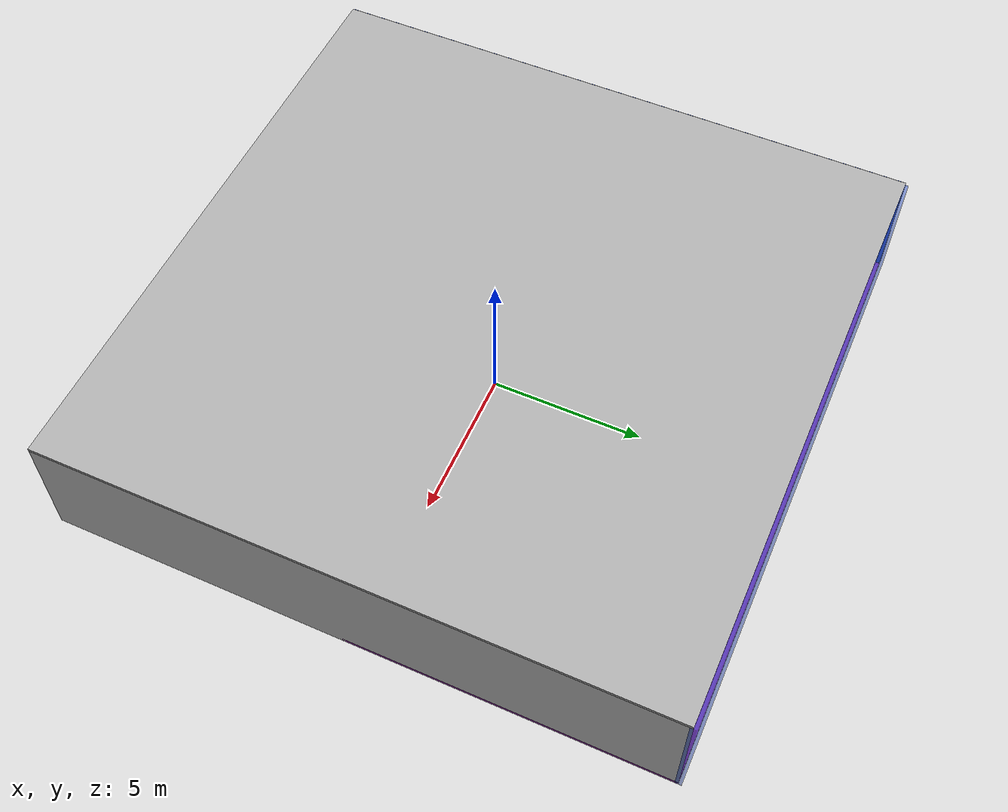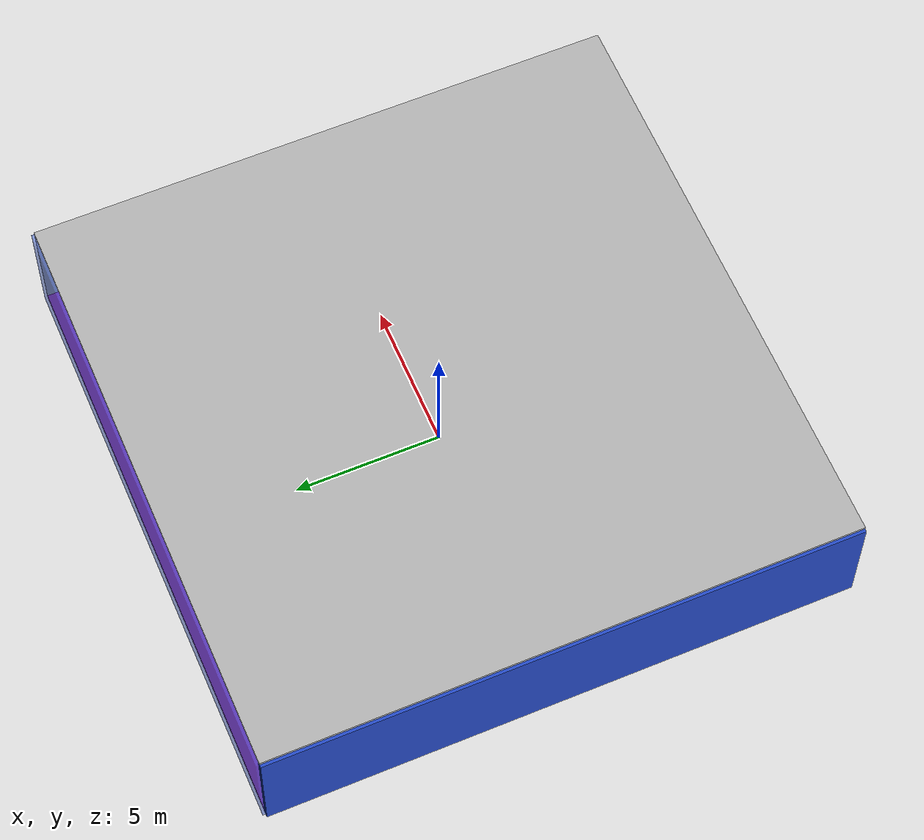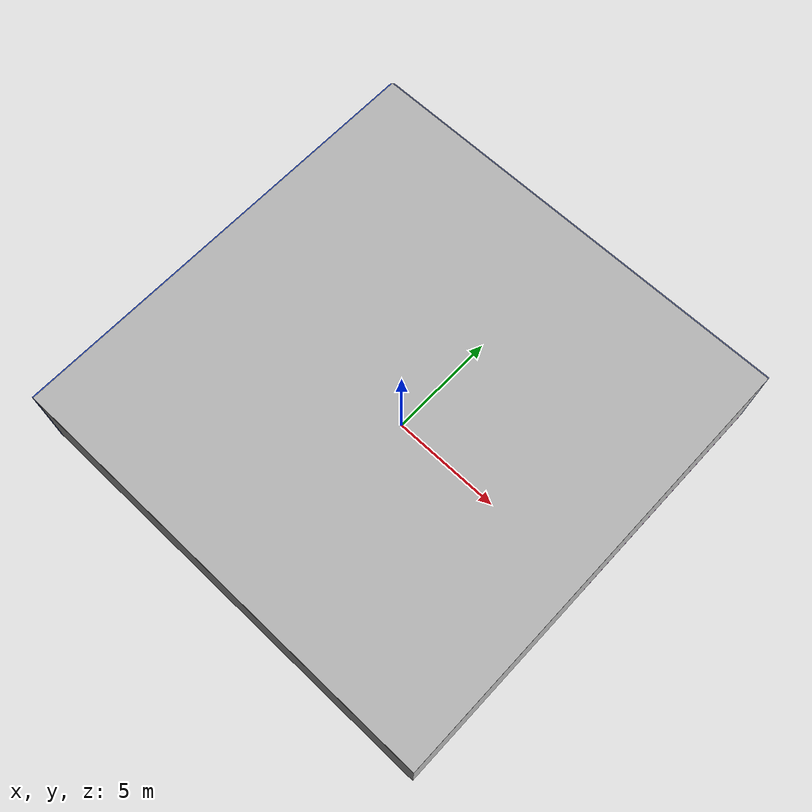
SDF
<sdf version="1.4">
 <world name="default">
  <physics type="ode">
   <max_step_size>0.001</max_step_size>
   <real_time_factor>1</real_time_factor>
   <real_time_update_rate>1000</real_time_update_rate>
   <gravity>0 0 -9.8</gravity>
  </physics>
  <scene><ambient>0.4 0.4 0.4 1</ambient><background>0.7 0.7 0.7 1</background><shadows>1</shadows></scene>
  <model name="Surrounding">
   <static>1</static>
   <link name="Ceiling">
    <collision name="Ceiling_Collision"><geometry><box><size>20 20 0.1</size></box></geometry></collision>
    <visual name="Ceiling_Visual">
     <geometry><box><size>20 20 0.1</size></box></geometry>
     <material>
      <script><uri>file://media/materials/scripts/gazebo.material</uri><name>Gazebo/Pioneer2Body</name></script>
     </material>
    </visual>
    <pose>0 0 4.05 0 0 0</pose>
   </link>
   <link name="Wall_South">
    <collision name="Wall_South_Collision">
     <geometry><box><size>20 0 4</size></box></geometry>
     <pose>0 0 2 0 -0 0</pose>
    </collision>
    <visual name="Wall_South_Visual">
     <pose>0 0 2 0 -0 0</pose>
     <geometry><box><size>20 0 4</size></box></geometry>
     <material>
      <script><uri>file://media/materials/scripts/gazebo.material</uri><name>Gazebo/GreyGradientSky</name></script>
     </material>
    </visual>
    <velocity_decay><linear>0</linear><angular>0</angular></velocity_decay>
    <pose>0 -10 0 0 -0 0</pose>
   </link>
   <link name="Wall_East">
    <collision name="Wall_21_Collision">
     <geometry><box><size>20 0 4</size></box></geometry>
     <pose>0 0 2 0 -0 0</pose>
    </collision>
    <visual name="Wall_21_Visual">
     <pose>0 0 2 0 -0 0</pose>
     <geometry><box><size>20 0 4</size></box></geometry>
     <material>
      <script><uri>file://media/materials/scripts/gazebo.material</uri><name>Gazebo/Pioneer2Body</name></script>
     </material>
    </visual>
    <velocity_decay><linear>0</linear><angular>0</angular></velocity_decay>
    <pose>10 0 0 0 -0 1.5708</pose>
   </link>
   <link name="Wall_North">
    <collision name="Wall_22_Collision">
     <geometry><box><size>20 0.2 4</size></box></geometry>
     <pose>0 0 2 0 -0 0</pose>
    </collision>
    <visual name="Wall_22_Visual">
     <pose>0 0 2 0 -0 0</pose>
     <geometry><box><size>20 0.2 4</size></box></geometry>
     <material>
      <script><uri>file://media/materials/scripts/gazebo.material</uri><name>Gazebo/BlueTransparent</name></script>
     </material>
    </visual>
    <velocity_decay><linear>0</linear><angular>0</angular></velocity_decay>
    <pose>0 10 0 0 -0 0</pose>
   </link>
   <link name="Wall_West">
    <collision name="Wall_23_Collision">
     <geometry><box><size>20 0.2 4</size></box></geometry>
     <pose>0 0 2 0 -0 0</pose>
    </collision>
    <visual name="Wall_23_Visual">
     <pose>0 0 2 0 -0 0</pose>
     <geometry><box><size>20 0.2 4</size></box></geometry>
     <material>
      <script><uri>file://media/materials/scripts/gazebo.material</uri><name>Gazebo/Blue</name></script>
     </material>
    </visual>
    <velocity_decay><linear>0</linear><angular>0</angular></velocity_decay>
    <pose>-10 0 0 0 0 -1.5708</pose>
   </link>
   <link name="Ground_link">
    <collision name="collision">
     <pose>0 0 .05 0 -0 0</pose>
     <geometry><box><size>20 20 0.1</size></box></geometry>
    </collision>
    <visual name="visual">
     <pose>0 0 .05 0 -0 0</pose>
     <geometry><box><size>20 20 0.1</size></box></geometry>
     <material>
      <script><uri>file://media/materials/scripts/gazebo.material</uri><name>Gazebo/PurpleGlow</name></script>
     </material>
    </visual>
   </link>
   <static>1</static>
  </model>
  <spherical_coordinates>
   <surface_model>EARTH_WGS84</surface_model>
   <latitude_deg>0</latitude_deg>
   <longitude_deg>0</longitude_deg>
   <elevation>0</elevation>
   <heading_deg>0</heading_deg>
  </spherical_coordinates>
  <light name="lightball_0" type="diffuse">
   <diffuse>0.8 0.8 0.8 1</diffuse>
   <specular>0.2 0.2 0.2 1</specular>
   <attenuation>
    <range>100</range>
    <constant>0.7</constant>
    <linear>0.01</linear>
    <quadratic>0.001</quadratic>
   </attenuation>
   <direction>-0.5 0.1 -0.9</direction>
   <pose>5.12554815277 -2.11524077063 2.40779734799 0 0 0</pose>
  </light>
  <light name="lightball_1" type="diffuse">
   <diffuse>0.8 0.8 0.8 1</diffuse>
   <specular>0.2 0.2 0.2 1</specular>
   <attenuation>
    <range>100</range>
    <constant>0.7</constant>
    <linear>0.01</linear>
    <quadratic>0.001</quadratic>
   </attenuation>
   <direction>-0.5 0.1 -0.9</direction>
   <pose>-8.284447324 8.48373131389 1.65516685549 0 0 0</pose>
  </light>
  <light name="lightball_2" type="diffuse">
   <diffuse>0.8 0.8 0.8 1</diffuse>
   <specular>0.2 0.2 0.2 1</specular>
   <attenuation>
    <range>100</range>
    <constant>0.7</constant>
    <linear>0.01</linear>
    <quadratic>0.001</quadratic>
   </attenuation>
   <direction>-0.5 0.1 -0.9</direction>
   <pose>8.85707353045 -2.34979527065 2.70452961522 0 0 0</pose>
  </light>
  <light name="lightball_3" type="diffuse">
   <diffuse>0.8 0.8 0.8 1</diffuse>
   <specular>0.2 0.2 0.2 1</specular>
   <attenuation>
    <range>100</range>
    <constant>0.7</constant>
    <linear>0.01</linear>
    <quadratic>0.001</quadratic>
   </attenuation>
   <direction>-0.5 0.1 -0.9</direction>
   <pose>-7.33890024826 -6.44780217834 1.81786389141 0 0 0</pose>
  </light>
  <light name="lightball_4" type="diffuse">
   <diffuse>0.8 0.8 0.8 1</diffuse>
   <specular>0.2 0.2 0.2 1</specular>
   <attenuation>
    <range>100</range>
    <constant>0.7</constant>
    <linear>0.01</linear>
    <quadratic>0.001</quadratic>
   </attenuation>
   <direction>-0.5 0.1 -0.9</direction>
   <pose>-8.41879023926 -3.57108205421 1.26482995314 0 0 0</pose>
  </light>
  <light name="lightball_5" type="diffuse">
   <diffuse>0.8 0.8 0.8 1</diffuse>
   <specular>0.2 0.2 0.2 1</specular>
   <attenuation>
    <range>100</range>
    <constant>0.7</constant>
    <linear>0.01</linear>
    <quadratic>0.001</quadratic>
   </attenuation>
   <direction>-0.5 0.1 -0.9</direction>
   <pose>9.50452577519 -1.52685774719 1.87008805838 0 0 0</pose>
  </light>
  <include>
   <uri>model://robocup_3Dsim_goal</uri>
   <pose>-7.77369158467 -1.48656737029 0 0 0 1.95615924115</pose>
  </include>
  <include><uri>model://cabinet</uri><pose>-1.46383366629 -8.1225596828 0 0 0 2.16694665544</pose></include>
  <include><uri>model://cabinet</uri><pose>-1.70383624941 -3.59106475093 0 0 0 0.0389531616459</pose></include>
  <include><uri>model://cabinet</uri><pose>-0.97580146208 -0.957426565931 0 0 0 3.11373642157</pose></include>
  <include>
   <uri>model://robocup_3Dsim_goal</uri>
   <pose>4.46781187778 -1.15315965982 0 0 0 0.968743854501</pose>
  </include>
  <include>
   <uri>model://robocup_3Dsim_goal</uri>
   <pose>7.56318917765 5.4595042079 0 0 0 2.82804518878</pose>
  </include>
 </world>
</sdf>

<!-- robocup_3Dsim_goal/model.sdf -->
<sdf version="1.5">
  <model name="robocup_3d_goal">
    <static>true</static>
    <link name="left_post">
      <pose>0 1.05 0.45 0 0 0</pose>
      <collision name="collision">
        <geometry>
          <cylinder>
            <radius>0.05</radius>
            <length>0.9</length>
          </cylinder>
        </geometry>
      </collision>
      <visual name="visual">
        <geometry>
          <cylinder>
            <radius>0.05</radius>
            <length>0.9</length>
          </cylinder>
        </geometry>
        <material>
          <script>
            <uri>file://media/materials/scripts/gazebo.material</uri>
            <name>Gazebo/ZincYellow</name>
          </script>
        </material>
      </visual>
    </link>
    <link name="left_support_horiz_lower">
      <pose>0.30 1.05 0.01 0 0 0</pose>
      <collision name="collision">
        <geometry>
          <box>
            <size>0.50 0.02 0.02</size>
          </box>
        </geometry>
      </collision>
      <visual name="visual">
        <geometry>
          <box>
            <size>0.50 0.02 0.02</size>
          </box>
        </geometry>
        <material>
          <script>
            <uri>file://media/materials/scripts/gazebo.material</uri>
            <name>Gazebo/White</name>
          </script>
        </material>
      </visual>
    </link>
    <link name="left_support_horiz_upper">
      <pose>0.30 1.05 0.79 0 0 0</pose>
      <collision name="collision">
        <geometry>
          <box>
            <size>0.50 0.02 0.02</size>
          </box>
        </geometry>
      </collision>
      <visual name="visual">
        <geometry>
          <box>
            <size>0.50 0.02 0.02</size>
          </box>
        </geometry>
        <material>
          <script>
            <uri>file://media/materials/scripts/gazebo.material</uri>
            <name>Gazebo/White</name>
          </script>
        </material>
      </visual>
    </link>
    <link name="left_support_vertical">
      <pose>0.56 1.05 0.4 0 1.5708 0</pose>
      <collision name="collision">
        <geometry>
          <box>
            <size>0.80 0.02 0.02</size>
          </box>
        </geometry>
      </collision>
      <visual name="visual">
        <geometry>
          <box>
            <size>0.80 0.02 0.02</size>
          </box>
        </geometry>
        <material>
          <script>
            <uri>file://media/materials/scripts/gazebo.material</uri>
            <name>Gazebo/White</name>
          </script>
        </material>
      </visual>
    </link>
    <link name="right_support_horiz_lower">
      <pose>0.30 -1.05 0.01 0 0 0</pose>
      <collision name="collision">
        <geometry>
          <box>
            <size>0.50 0.02 0.02</size>
          </box>
        </geometry>
      </collision>
      <visual name="visual">
        <geometry>
          <box>
            <size>0.50 0.02 0.02</size>
          </box>
        </geometry>
        <material>
          <script>
            <uri>file://media/materials/scripts/gazebo.material</uri>
            <name>Gazebo/White</name>
          </script>
        </material>
      </visual>
    </link>
    <link name="right_support_horiz_upper">
      <pose>0.30 -1.05 0.79 0 0 0</pose>
      <collision name="collision">
        <geometry>
          <box>
            <size>0.50 0.02 0.02</size>
          </box>
        </geometry>
      </collision>
      <visual name="visual">
        <geometry>
          <box>
            <size>0.50 0.02 0.02</size>
          </box>
        </geometry>
        <material>
          <script>
            <uri>file://media/materials/scripts/gazebo.material</uri>
            <name>Gazebo/White</name>
          </script>
        </material>
      </visual>
    </link>
    <link name="right_support_vertical">
      <pose>0.56 -1.05 0.4 0 1.5708 0</pose>
      <collision name="collision">
        <geometry>
          <box>
            <size>0.80 0.02 0.02</size>
          </box>
        </geometry>
      </collision>
      <visual name="visual">
        <geometry>
          <box>
            <size>0.80 0.02 0.02</size>
          </box>
        </geometry>
        <material>
          <script>
            <uri>file://media/materials/scripts/gazebo.material</uri>
            <name>Gazebo/White</name>
          </script>
        </material>
      </visual>
    </link>
    <link name="center_support_horiz_lower">
      <pose>0.56 0 0.01 0 1.5708 0</pose>
      <collision name="collision">
        <geometry>
          <box>
            <size>0.02 2.08 0.02</size>
          </box>
        </geometry>
      </collision>
      <visual name="visual">
        <geometry>
          <box>
            <size>0.02 2.08 0.02</size>
          </box>
        </geometry>
        <material>
          <script>
            <uri>file://media/materials/scripts/gazebo.material</uri>
            <name>Gazebo/White</name>
          </script>
        </material>
      </visual>
    </link>
    <link name="center_support_horiz_upper">
      <pose>0.56 0 0.79 0 1.5708 0</pose>
      <collision name="collision">
        <geometry>
          <box>
            <size>0.02 2.08 0.02</size>
          </box>
        </geometry>
      </collision>
      <visual name="visual">
        <geometry>
          <box>
            <size>0.02 2.08 0.02</size>
          </box>
        </geometry>
        <material>
          <script>
            <uri>file://media/materials/scripts/gazebo.material</uri>
            <name>Gazebo/White</name>
          </script>
        </material>
      </visual>
    </link>
    <link name="right_post">
      <pose>0 -1.05 0.45 0 0 0</pose>
      <collision name="collision">
        <geometry>
          <cylinder>
            <radius>0.05</radius>
            <length>0.9</length>
          </cylinder>
        </geometry>
      </collision>
      <visual name="visual">
        <geometry>
          <cylinder>
            <radius>0.05</radius>
            <length>0.9</length>
          </cylinder>
        </geometry>
        <material>
          <script>
            <uri>file://media/materials/scripts/gazebo.material</uri>
            <name>Gazebo/ZincYellow</name>
          </script>
        </material>
      </visual>
    </link>
    <link name="crossbar">
      <pose>0 0 0.85 1.57 1.57 0</pose>
      <collision name="collision">
        <geometry>
          <cylinder>
            <radius>0.05</radius>
            <length>2.0</length>
          </cylinder>
        </geometry>
      </collision>
      <visual name="visual">
        <geometry>
          <cylinder>
            <radius>0.05</radius>
            <length>2.0</length>
          </cylinder>
        </geometry>
        <material>
          <script>
            <uri>file://media/materials/scripts/gazebo.material</uri>
            <name>Gazebo/ZincYellow</name>
          </script>
        </material>
      </visual>
    </link>
    <link name="center_net">
      <pose>0.56 0 0.40 0 0 0</pose>
      <collision name="collision">
        <geometry>
          <box>
            <size>0.01 2.1 0.80</size>
          </box>
        </geometry>
      </collision>
      <visual name="visual">
        <geometry>
          <box>
            <size>0.01 2.1 0.80</size>
          </box>
        </geometry>
        <material>
          <script>
            <uri>model://../model_source/models/robocup09_spl_field/materials/scripts/</uri>
            <uri>model://../model_source/models/robocup09_spl_field/materials/textures/</uri>
            <name>RoboCup/Net</name>
          </script>
        </material>
      </visual>
    </link>
    <link name="left_net">
      <pose>0.30 1.05 0.40 0 0 0</pose>
      <collision name="collision">
        <geometry>
          <box>
            <size>0.50 0.01 0.76</size>
          </box>
        </geometry>
      </collision>
      <visual name="visual">
        <geometry>
          <box>
            <size>0.50 0.01 0.76</size>
          </box>
        </geometry>
        <material>
          <script>
            <uri>model://../model_source/models/robocup09_spl_field/materials/scripts/</uri>
            <uri>model://../model_source/models/robocup09_spl_field/materials/textures/</uri>
            <name>RoboCup/Net</name>
          </script>
        </material>
      </visual>
    </link>
    <link name="right_net">
      <pose>0.30 -1.05 0.40 0 0 0</pose>
      <collision name="collision">
        <geometry>
          <box>
            <size>0.50 0.01 0.76</size>
          </box>
        </geometry>
      </collision>
      <visual name="visual">
        <geometry>
          <box>
            <size>0.50 0.01 0.76</size>
          </box>
        </geometry>
        <material>
          <script>
            <uri>model://../model_source/models/robocup09_spl_field/materials/scripts/</uri>
            <uri>model://../model_source/models/robocup09_spl_field/materials/textures/</uri>
            <name>RoboCup/Net</name>
          </script>
        </material>
      </visual>
    </link>
  </model>
</sdf>

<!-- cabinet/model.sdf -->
<sdf version="1.5">
  <model name="cabinet">
    <static>true</static>
    <link name="cabinet_bottom_plate">
      <inertial>
        <pose>0 0 -1 0 0 0</pose>
        <inertia>
          <ixx>2.050000</ixx>
          <ixy>0</ixy>
          <ixz>0</ixz>
          <iyy>2.050000</iyy>
          <iyz>0</iyz>
          <izz>2.050000</izz>
        </inertia>
        <mass>25.000000</mass>
      </inertial>
      <collision name="cabinet_bottom_plate_geom">
        <pose>0 0 0.010000 0 0 0</pose>
        <geometry>
          <box>
            <size>0.450000 0.450000 0.020000</size>
          </box>
        </geometry>
      </collision>
      <visual name="cabinet_bottom_plate_geom_visual">
        <pose>0 0 0.010000 0 0 0</pose>
        <geometry>
          <box>
            <size>0.450000 0.450000 0.020000</size>
          </box>
        </geometry>
        <material>
          <script>
            <uri>model://media/materials/scripts/gazebo.material</uri>
            <name>Gazebo/Wood</name>
          </script>
        </material>
      </visual>
      <collision name="cabinet_bottom_plate_geom_cabinet_back_plate">
        <pose>0.235000 0 0.510000 0 0 0</pose>
        <geometry>
          <box>
            <size>0.020000 0.450000 1.020000</size>
          </box>
        </geometry>
      </collision>
      <visual name="cabinet_bottom_plate_geom_cabinet_back_plate_visual">
        <pose>0.235000 0 0.510000 0 0 0</pose>
        <geometry>
          <box>
            <size>0.020000 0.450000 1.020000</size>
          </box>
        </geometry>
        <material>
          <script>
            <uri>model://media/materials/scripts/gazebo.material</uri>
            <name>Gazebo/Wood</name>
          </script>
        </material>
      </visual>
      <collision name="cabinet_bottom_plate_geom_cabinet_left_plate">
        <pose>0 0.235000 0.510000 0 0 0</pose>
        <geometry>
          <box>
            <size>0.450000 0.020000 1.020000</size>
          </box>
        </geometry>
      </collision>
      <visual name="cabinet_bottom_plate_geom_cabinet_left_plate_visual">
        <pose>0 0.235000 0.510000 0 0 0</pose>
        <geometry>
          <box>
            <size>0.450000 0.020000 1.020000</size>
          </box>
        </geometry>
        <material>
          <script>
            <uri>model://media/materials/scripts/gazebo.material</uri>
            <name>Gazebo/Wood</name>
          </script>
        </material>
      </visual>
      <collision name="cabinet_bottom_plate_geom_cabinet_middle_plate">
        <pose>0 0 0.510000 0 0 0</pose>
        <geometry>
          <box>
            <size>0.450000 0.450000 0.020000</size>
          </box>
        </geometry>
      </collision>
      <visual name="cabinet_bottom_plate_geom_cabinet_middle_plate_visual">
        <pose>0 0 0.510000 0 0 0</pose>
        <geometry>
          <box>
            <size>0.450000 0.450000 0.020000</size>
          </box>
        </geometry>
        <material>
          <script>
            <uri>model://media/materials/scripts/gazebo.material</uri>
            <name>Gazebo/Wood</name>
          </script>
        </material>
      </visual>
      <collision name="cabinet_bottom_plate_geom_cabinet_right_plate">
        <pose>0 -0.235000 0.510000 0 0 0</pose>
        <geometry>
          <box>
            <size>0.450000 0.020000 1.020000</size>
          </box>
        </geometry>
      </collision>
      <visual name="cabinet_bottom_plate_geom_cabinet_right_plate_visual">
        <pose>0 -0.235000 0.510000 0 0 0</pose>
        <geometry>
          <box>
            <size>0.450000 0.020000 1.020000</size>
          </box>
        </geometry>
        <material>
          <script>
            <uri>model://media/materials/scripts/gazebo.material</uri>
            <name>Gazebo/Wood</name>
          </script>
        </material>
      </visual>
      <collision name="cabinet_bottom_plate_geom_cabinet_top_plate">
        <pose>0 0 1.010000 0 0 0</pose>
        <geometry>
          <box>
            <size>0.450000 0.450000 0.020000</size>
          </box>
        </geometry>
      </collision>
      <visual name="cabinet_bottom_plate_geom_cabinet_top_plate_visual">
        <pose>0 0 1.010000 0 0 0</pose>
        <geometry>
          <box>
            <size>0.450000 0.450000 0.020000</size>
          </box>
        </geometry>
        <material>
          <script>
            <uri>model://media/materials/scripts/gazebo.material</uri>
            <name>Gazebo/Wood</name>
          </script>
        </material>
      </visual>
    </link>
  </model>
</sdf>
